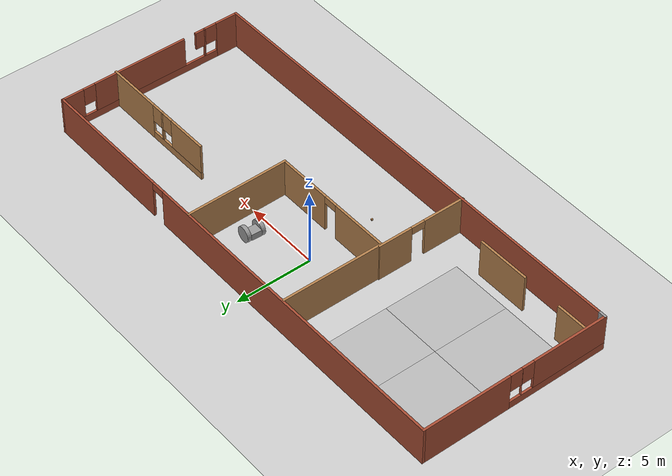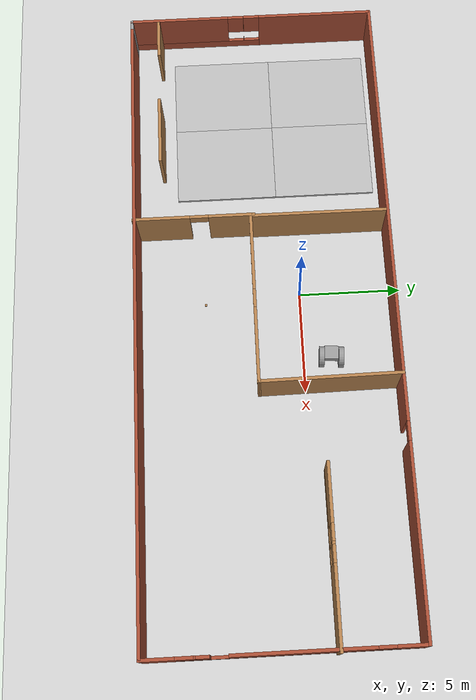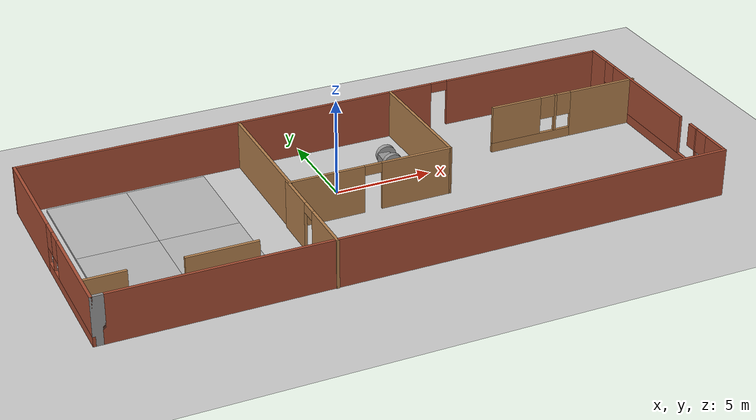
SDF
<sdf version="1.7">
 <world name="default">
  <model name="ground_plane">
   <static>1</static>
   <link name="link">
    <collision name="collision">
     <geometry><plane><normal>0 0 1</normal><size>100 100</size></plane></geometry>
     <surface>
      <contact><collide_bitmask>65535</collide_bitmask></contact>
      <friction><ode><mu>100</mu><mu2>50</mu2></ode></friction>
     </surface>
    </collision>
    <visual name="visual">
     <cast_shadows>0</cast_shadows>
     <geometry><plane><normal>0 0 1</normal><size>100 100</size></plane></geometry>
     <material>
      <script><uri>file://media/materials/scripts/gazebo.material</uri><name>Gazebo/Grey</name></script>
     </material>
    </visual>
   </link>
  </model>
  <model name="apartment">
   <pose>1.18499 -1.72683 0 0 -0 0</pose>
   <link name="Wall_18">
    <collision name="Wall_18_Collision">
     <geometry><box><size>31.25 0.15 2.5</size></box></geometry>
     <pose>0 0 1.25 0 -0 0</pose>
    </collision>
    <visual name="Wall_18_Visual">
     <pose>0 0 1.25 0 -0 0</pose>
     <geometry><box><size>31.25 0.15 2.5</size></box></geometry>
     <material>
      <script><uri>file://media/materials/scripts/gazebo.material</uri><name>Gazebo/Bricks</name></script>
      <ambient>1 1 1 1</ambient>
     </material>
     <meta><layer>0</layer></meta>
    </visual>
    <pose>0.204376 -6.15477 0 0 -0 0</pose>
   </link>
   <link name="Wall_19">
    <pose>15.7544 0.020228 0 0 -0 1.5708</pose>
    <visual name="Wall_19_Visual_0">
     <pose>-5.46179 0 1.25 0 -0 0</pose>
     <geometry><box><size>1.57641 0.15 2.5</size></box></geometry>
     <material>
      <script><uri>file://media/materials/scripts/gazebo.material</uri><name>Gazebo/Bricks</name></script>
      <ambient>1 1 1 1</ambient>
     </material>
     <meta><layer>0</layer></meta>
    </visual>
    <collision name="Wall_19_Collision_0">
     <geometry><box><size>1.57641 0.15 2.5</size></box></geometry>
     <pose>-5.46179 0 1.25 0 -0 0</pose>
    </collision>
    <visual name="Wall_19_Visual_1">
     <pose>0.788206 0 0.25 0 -0 0</pose>
     <geometry><box><size>10.9236 0.15 0.5</size></box></geometry>
     <material>
      <script><uri>file://media/materials/scripts/gazebo.material</uri><name>Gazebo/Bricks</name></script>
      <ambient>1 1 1 1</ambient>
     </material>
     <meta><layer>0</layer></meta>
    </visual>
    <collision name="Wall_19_Collision_1">
     <geometry><box><size>10.9236 0.15 0.5</size></box></geometry>
     <pose>0.788206 0 0.25 0 -0 0</pose>
    </collision>
    <visual name="Wall_19_Visual_2">
     <pose>-3.82858 0 1.5 0 -0 0</pose>
     <geometry><box><size>0.090023 0.15 2</size></box></geometry>
     <material>
      <script><uri>file://media/materials/scripts/gazebo.material</uri><name>Gazebo/Bricks</name></script>
      <ambient>1 1 1 1</ambient>
     </material>
     <meta><layer>0</layer></meta>
    </visual>
    <collision name="Wall_19_Collision_2">
     <geometry><box><size>0.090023 0.15 2</size></box></geometry>
     <pose>-3.82858 0 1.5 0 -0 0</pose>
    </collision>
    <visual name="Wall_19_Visual_3">
     <pose>0.803587 0 1.5 0 -0 0</pose>
     <geometry><box><size>6.36064 0.15 2</size></box></geometry>
     <material>
      <script><uri>file://media/materials/scripts/gazebo.material</uri><name>Gazebo/Bricks</name></script>
      <ambient>1 1 1 1</ambient>
     </material>
     <meta><layer>0</layer></meta>
    </visual>
    <collision name="Wall_19_Collision_3">
     <geometry><box><size>6.36064 0.15 2</size></box></geometry>
     <pose>0.803587 0 1.5 0 -0 0</pose>
    </collision>
    <visual name="Wall_19_Visual_4">
     <pose>5.51695 0 1.5 0 -0 0</pose>
     <geometry><box><size>1.46609 0.15 2</size></box></geometry>
     <material>
      <script><uri>file://media/materials/scripts/gazebo.material</uri><name>Gazebo/Bricks</name></script>
      <ambient>1 1 1 1</ambient>
     </material>
     <meta><layer>0</layer></meta>
    </visual>
    <collision name="Wall_19_Collision_4">
     <geometry><box><size>1.46609 0.15 2</size></box></geometry>
     <pose>5.51695 0 1.5 0 -0 0</pose>
    </collision>
    <visual name="Wall_19_Visual_5">
     <pose>-4.27359 0 1.9 0 -0 0</pose>
     <geometry><box><size>0.8 0.15 1.2</size></box></geometry>
     <material>
      <script><uri>file://media/materials/scripts/gazebo.material</uri><name>Gazebo/Bricks</name></script>
      <ambient>1 1 1 1</ambient>
     </material>
     <meta><layer>0</layer></meta>
    </visual>
    <collision name="Wall_19_Collision_5">
     <geometry><box><size>0.8 0.15 1.2</size></box></geometry>
     <pose>-4.27359 0 1.9 0 -0 0</pose>
    </collision>
    <visual name="Wall_19_Visual_6">
     <pose>-3.48015 0 1.9 0 -0 0</pose>
     <geometry><box><size>0.606833 0.15 1.2</size></box></geometry>
     <material>
      <script><uri>file://media/materials/scripts/gazebo.material</uri><name>Gazebo/Bricks</name></script>
      <ambient>1 1 1 1</ambient>
     </material>
     <meta><layer>0</layer></meta>
    </visual>
    <collision name="Wall_19_Collision_6">
     <geometry><box><size>0.606833 0.15 1.2</size></box></geometry>
     <pose>-3.48015 0 1.9 0 -0 0</pose>
    </collision>
    <visual name="Wall_19_Visual_7">
     <pose>4.38391 0 1.9 0 -0 0</pose>
     <geometry><box><size>0.8 0.15 1.2</size></box></geometry>
     <material>
      <script><uri>file://media/materials/scripts/gazebo.material</uri><name>Gazebo/Bricks</name></script>
      <ambient>1 1 1 1</ambient>
     </material>
     <meta><layer>0</layer></meta>
    </visual>
    <collision name="Wall_19_Collision_7">
     <geometry><box><size>0.8 0.15 1.2</size></box></geometry>
     <pose>4.38391 0 1.9 0 -0 0</pose>
    </collision>
   </link>
   <link name="Wall_20">
    <pose>-0.045624 6.19523 0 0 -0 3.14159</pose>
    <visual name="Wall_20_Visual_0">
     <pose>-11.4355 0 1.25 0 -0 0</pose>
     <geometry><box><size>8.87899 0.15 2.5</size></box></geometry>
     <material>
      <script><uri>file://media/materials/scripts/gazebo.material</uri><name>Gazebo/Bricks</name></script>
      <ambient>1 1 1 1</ambient>
     </material>
     <meta><layer>0</layer></meta>
    </visual>
    <collision name="Wall_20_Collision_0">
     <geometry><box><size>8.87899 0.15 2.5</size></box></geometry>
     <pose>-11.4355 0 1.25 0 -0 0</pose>
    </collision>
    <visual name="Wall_20_Visual_1">
     <pose>4.88949 0 1.25 0 -0 0</pose>
     <geometry><box><size>21.971 0.15 2.5</size></box></geometry>
     <material>
      <script><uri>file://media/materials/scripts/gazebo.material</uri><name>Gazebo/Bricks</name></script>
      <ambient>1 1 1 1</ambient>
     </material>
     <meta><layer>0</layer></meta>
    </visual>
    <collision name="Wall_20_Collision_1">
     <geometry><box><size>21.971 0.15 2.5</size></box></geometry>
     <pose>4.88949 0 1.25 0 -0 0</pose>
    </collision>
    <visual name="Wall_20_Visual_2">
     <pose>-6.54601 0 2.25 0 -0 0</pose>
     <geometry><box><size>0.9 0.15 0.5</size></box></geometry>
     <material>
      <script><uri>file://media/materials/scripts/gazebo.material</uri><name>Gazebo/Bricks</name></script>
      <ambient>1 1 1 1</ambient>
     </material>
     <meta><layer>0</layer></meta>
    </visual>
    <collision name="Wall_20_Collision_2">
     <geometry><box><size>0.9 0.15 0.5</size></box></geometry>
     <pose>-6.54601 0 2.25 0 -0 0</pose>
    </collision>
   </link>
   <link name="Wall_21">
    <pose>-15.8456 0.020228 0 0 0 -1.5708</pose>
    <visual name="Wall_21_Visual_0">
     <pose>-3.33235 0 1.25 0 -0 0</pose>
     <geometry><box><size>5.8353 0.15 2.5</size></box></geometry>
     <material>
      <script><uri>file://media/materials/scripts/gazebo.material</uri><name>Gazebo/Bricks</name></script>
      <ambient>1 1 1 1</ambient>
     </material>
     <meta><layer>0</layer></meta>
    </visual>
    <collision name="Wall_21_Collision_0">
     <geometry><box><size>5.8353 0.15 2.5</size></box></geometry>
     <pose>-3.33235 0 1.25 0 -0 0</pose>
    </collision>
    <visual name="Wall_21_Visual_1">
     <pose>2.91765 0 0.25 0 -0 0</pose>
     <geometry><box><size>6.6647 0.15 0.5</size></box></geometry>
     <material>
      <script><uri>file://media/materials/scripts/gazebo.material</uri><name>Gazebo/Bricks</name></script>
      <ambient>1 1 1 1</ambient>
     </material>
     <meta><layer>0</layer></meta>
    </visual>
    <collision name="Wall_21_Collision_1">
     <geometry><box><size>6.6647 0.15 0.5</size></box></geometry>
     <pose>2.91765 0 0.25 0 -0 0</pose>
    </collision>
    <visual name="Wall_21_Visual_2">
     <pose>0.389852 0 1.5 0 -0 0</pose>
     <geometry><box><size>0.009111 0.15 2</size></box></geometry>
     <material>
      <script><uri>file://media/materials/scripts/gazebo.material</uri><name>Gazebo/Bricks</name></script>
      <ambient>1 1 1 1</ambient>
     </material>
     <meta><layer>0</layer></meta>
    </visual>
    <collision name="Wall_21_Collision_2">
     <geometry><box><size>0.009111 0.15 2</size></box></geometry>
     <pose>0.389852 0 1.5 0 -0 0</pose>
    </collision>
    <visual name="Wall_21_Visual_3">
     <pose>3.7222 0 1.5 0 -0 0</pose>
     <geometry><box><size>5.05559 0.15 2</size></box></geometry>
     <material>
      <script><uri>file://media/materials/scripts/gazebo.material</uri><name>Gazebo/Bricks</name></script>
      <ambient>1 1 1 1</ambient>
     </material>
     <meta><layer>0</layer></meta>
    </visual>
    <collision name="Wall_21_Collision_3">
     <geometry><box><size>5.05559 0.15 2</size></box></geometry>
     <pose>3.7222 0 1.5 0 -0 0</pose>
    </collision>
    <visual name="Wall_21_Visual_4">
     <pose>-0.014703 0 1.9 0 -0 0</pose>
     <geometry><box><size>0.8 0.15 1.2</size></box></geometry>
     <material>
      <script><uri>file://media/materials/scripts/gazebo.material</uri><name>Gazebo/Bricks</name></script>
      <ambient>1 1 1 1</ambient>
     </material>
     <meta><layer>0</layer></meta>
    </visual>
    <collision name="Wall_21_Collision_4">
     <geometry><box><size>0.8 0.15 1.2</size></box></geometry>
     <pose>-0.014703 0 1.9 0 -0 0</pose>
    </collision>
    <visual name="Wall_21_Visual_5">
     <pose>0.794408 0 1.9 0 -0 0</pose>
     <geometry><box><size>0.8 0.15 1.2</size></box></geometry>
     <material>
      <script><uri>file://media/materials/scripts/gazebo.material</uri><name>Gazebo/Bricks</name></script>
      <ambient>1 1 1 1</ambient>
     </material>
     <meta><layer>0</layer></meta>
    </visual>
    <collision name="Wall_21_Collision_5">
     <geometry><box><size>0.8 0.15 1.2</size></box></geometry>
     <pose>0.794408 0 1.9 0 -0 0</pose>
    </collision>
   </link>
   <link name="Wall_22">
    <collision name="Wall_22_Collision">
     <geometry><box><size>0.65 0.15 2.5</size></box></geometry>
     <pose>0 0 1.25 0 -0 0</pose>
    </collision>
    <visual name="Wall_22_Visual">
     <pose>0 0 1.25 0 -0 0</pose>
     <geometry><box><size>0.65 0.15 2.5</size></box></geometry>
     <material>
      <script><uri>file://media/materials/scripts/gazebo.material</uri><name>Gazebo/Grey</name></script>
      <ambient>1 1 1 1</ambient>
     </material>
     <meta><layer>0</layer></meta>
    </visual>
    <pose>-15.5956 -6.15477 0 0 -0 0</pose>
   </link>
   <link name="Wall_24">
    <collision name="Wall_24_Collision">
     <geometry><box><size>6.8314 0.15 2.5</size></box></geometry>
     <pose>0 0 1.25 0 -0 0</pose>
    </collision>
    <visual name="Wall_24_Visual">
     <pose>0 0 1.25 0 -0 0</pose>
     <geometry><box><size>6.8314 0.15 2.5</size></box></geometry>
     <material>
      <script><uri>file://media/materials/scripts/gazebo.material</uri><name>Gazebo/Wood</name></script>
      <ambient>0.996078 0.47451 0.0196078 1</ambient>
     </material>
     <meta><layer>0</layer></meta>
    </visual>
    <pose>3.78986 2.84372 0 0 0 -1.55869</pose>
   </link>
   <link name="Wall_27">
    <pose>-0.344681 -0.496732 0 0 -0 3.14159</pose>
    <visual name="Wall_27_Visual_0">
     <pose>-2.39449 0 1.25 0 -0 0</pose>
     <geometry><box><size>3.71101 0.15 2.5</size></box></geometry>
     <material>
      <script><uri>file://media/materials/scripts/gazebo.material</uri><name>Gazebo/Wood</name></script>
      <ambient>0.996078 0.47451 0.0196078 1</ambient>
     </material>
     <meta><layer>0</layer></meta>
    </visual>
    <collision name="Wall_27_Collision_0">
     <geometry><box><size>3.71101 0.15 2.5</size></box></geometry>
     <pose>-2.39449 0 1.25 0 -0 0</pose>
    </collision>
    <visual name="Wall_27_Visual_1">
     <pose>2.30551 0 1.25 0 -0 0</pose>
     <geometry><box><size>3.88899 0.15 2.5</size></box></geometry>
     <material>
      <script><uri>file://media/materials/scripts/gazebo.material</uri><name>Gazebo/Wood</name></script>
      <ambient>0.996078 0.47451 0.0196078 1</ambient>
     </material>
     <meta><layer>0</layer></meta>
    </visual>
    <collision name="Wall_27_Collision_1">
     <geometry><box><size>3.88899 0.15 2.5</size></box></geometry>
     <pose>2.30551 0 1.25 0 -0 0</pose>
    </collision>
    <visual name="Wall_27_Visual_2">
     <pose>-0.088987 0 2.25 0 -0 0</pose>
     <geometry><box><size>0.9 0.15 0.5</size></box></geometry>
     <material>
      <script><uri>file://media/materials/scripts/gazebo.material</uri><name>Gazebo/Wood</name></script>
      <ambient>0.996078 0.47451 0.0196078 1</ambient>
     </material>
     <meta><layer>0</layer></meta>
    </visual>
    <collision name="Wall_27_Collision_2">
     <geometry><box><size>0.9 0.15 0.5</size></box></geometry>
     <pose>-0.088987 0 2.25 0 -0 0</pose>
    </collision>
   </link>
   <link name="Wall_28">
    <collision name="Wall_28_Collision">
     <geometry><box><size>6.75 0.15 2.5</size></box></geometry>
     <pose>0 0 1.25 0 -0 0</pose>
    </collision>
    <visual name="Wall_28_Visual">
     <pose>0 0 1.25 0 -0 0</pose>
     <geometry><box><size>6.75 0.15 2.5</size></box></geometry>
     <material>
      <script><uri>file://media/materials/scripts/gazebo.material</uri><name>Gazebo/Wood</name></script>
      <ambient>0.996078 0.47451 0.0196078 1</ambient>
     </material>
     <meta><layer>0</layer></meta>
    </visual>
    <pose>-4.51968 2.80327 0 0 -0 1.5708</pose>
   </link>
   <link name="Wall_35">
    <pose>11.7956 2.42181 0 0 -0 3.14159</pose>
    <visual name="Wall_35_Visual_0">
     <pose>-2.24449 0 1.25 0 -0 0</pose>
     <geometry><box><size>3.76101 0.15 2.5</size></box></geometry>
     <material>
      <script><uri>file://media/materials/scripts/gazebo.material</uri><name>Gazebo/Wood</name></script>
      <ambient>0.996078 0.47451 0.0196078 1</ambient>
     </material>
     <meta><layer>0</layer></meta>
    </visual>
    <collision name="Wall_35_Collision_0">
     <geometry><box><size>3.76101 0.15 2.5</size></box></geometry>
     <pose>-2.24449 0 1.25 0 -0 0</pose>
    </collision>
    <visual name="Wall_35_Visual_1">
     <pose>1.88051 0 0.25 0 -0 0</pose>
     <geometry><box><size>4.48899 0.15 0.5</size></box></geometry>
     <material>
      <script><uri>file://media/materials/scripts/gazebo.material</uri><name>Gazebo/Wood</name></script>
      <ambient>0.996078 0.47451 0.0196078 1</ambient>
     </material>
     <meta><layer>0</layer></meta>
    </visual>
    <collision name="Wall_35_Collision_1">
     <geometry><box><size>4.48899 0.15 0.5</size></box></geometry>
     <pose>1.88051 0 0.25 0 -0 0</pose>
    </collision>
    <visual name="Wall_35_Visual_2">
     <pose>0.501253 0 1.5 0 -0 0</pose>
     <geometry><box><size>0.130478 0.15 2</size></box></geometry>
     <material>
      <script><uri>file://media/materials/scripts/gazebo.material</uri><name>Gazebo/Wood</name></script>
      <ambient>0.996078 0.47451 0.0196078 1</ambient>
     </material>
     <meta><layer>0</layer></meta>
    </visual>
    <collision name="Wall_35_Collision_2">
     <geometry><box><size>0.130478 0.15 2</size></box></geometry>
     <pose>0.501253 0 1.5 0 -0 0</pose>
    </collision>
    <visual name="Wall_35_Visual_3">
     <pose>2.74575 0 1.5 0 -0 0</pose>
     <geometry><box><size>2.75851 0.15 2</size></box></geometry>
     <material>
      <script><uri>file://media/materials/scripts/gazebo.material</uri><name>Gazebo/Wood</name></script>
      <ambient>0.996078 0.47451 0.0196078 1</ambient>
     </material>
     <meta><layer>0</layer></meta>
    </visual>
    <collision name="Wall_35_Collision_3">
     <geometry><box><size>2.75851 0.15 2</size></box></geometry>
     <pose>2.74575 0 1.5 0 -0 0</pose>
    </collision>
    <visual name="Wall_35_Visual_4">
     <pose>0.036014 0 1.9 0 -0 0</pose>
     <geometry><box><size>0.8 0.15 1.2</size></box></geometry>
     <material>
      <script><uri>file://media/materials/scripts/gazebo.material</uri><name>Gazebo/Wood</name></script>
      <ambient>0.996078 0.47451 0.0196078 1</ambient>
     </material>
     <meta><layer>0</layer></meta>
    </visual>
    <collision name="Wall_35_Collision_4">
     <geometry><box><size>0.8 0.15 1.2</size></box></geometry>
     <pose>0.036014 0 1.9 0 -0 0</pose>
    </collision>
    <visual name="Wall_35_Visual_5">
     <pose>0.966492 0 1.9 0 -0 0</pose>
     <geometry><box><size>0.8 0.15 1.2</size></box></geometry>
     <material>
      <script><uri>file://media/materials/scripts/gazebo.material</uri><name>Gazebo/Wood</name></script>
      <ambient>0.996078 0.47451 0.0196078 1</ambient>
     </material>
     <meta><layer>0</layer></meta>
    </visual>
    <collision name="Wall_35_Collision_5">
     <geometry><box><size>0.8 0.15 1.2</size></box></geometry>
     <pose>0.966492 0 1.9 0 -0 0</pose>
    </collision>
   </link>
   <link name="Wall_38">
    <collision name="Wall_38_Collision">
     <geometry><box><size>2 0.15 2.5</size></box></geometry>
     <pose>0 0 1.25 0 -0 0</pose>
    </collision>
    <visual name="Wall_38_Visual">
     <pose>0 0 1.25 0 -0 0</pose>
     <geometry><box><size>2 0.15 2.5</size></box></geometry>
     <material>
      <script><uri>file://media/materials/scripts/gazebo.material</uri><name>Gazebo/Wood</name></script>
      <ambient>0.996078 0.47451 0.0196078 1</ambient>
     </material>
     <meta><layer>0</layer></meta>
    </visual>
    <pose>-14.7847 -4.77928 0 0 -0 0</pose>
   </link>
   <link name="Wall_40">
    <collision name="Wall_40_Collision">
     <geometry><box><size>3.5 0.15 2.5</size></box></geometry>
     <pose>0 0 1.25 0 -0 0</pose>
    </collision>
    <visual name="Wall_40_Visual">
     <pose>0 0 1.25 0 -0 0</pose>
     <geometry><box><size>3.5 0.15 2.5</size></box></geometry>
     <material>
      <script><uri>file://media/materials/scripts/gazebo.material</uri><name>Gazebo/Wood</name></script>
      <ambient>0.996078 0.47451 0.0196078 1</ambient>
     </material>
     <meta><layer>0</layer></meta>
    </visual>
    <pose>-9.46324 -4.81974 0 0 -0 0</pose>
   </link>
   <link name="Wall_42">
    <pose>-4.58444 -3.27023 0 0 -0 1.5708</pose>
    <visual name="Wall_42_Visual_0">
     <pose>-1.5895 0 1.25 0 -0 0</pose>
     <geometry><box><size>2.82099 0.15 2.5</size></box></geometry>
     <material>
      <script><uri>file://media/materials/scripts/gazebo.material</uri><name>Gazebo/Wood</name></script>
      <ambient>0.996078 0.47451 0.0196078 1</ambient>
     </material>
     <meta><layer>0</layer></meta>
    </visual>
    <collision name="Wall_42_Collision_0">
     <geometry><box><size>2.82099 0.15 2.5</size></box></geometry>
     <pose>-1.5895 0 1.25 0 -0 0</pose>
    </collision>
    <visual name="Wall_42_Visual_1">
     <pose>1.8605 0 1.25 0 -0 0</pose>
     <geometry><box><size>2.27901 0.15 2.5</size></box></geometry>
     <material>
      <script><uri>file://media/materials/scripts/gazebo.material</uri><name>Gazebo/Wood</name></script>
      <ambient>0.996078 0.47451 0.0196078 1</ambient>
     </material>
     <meta><layer>0</layer></meta>
    </visual>
    <collision name="Wall_42_Collision_1">
     <geometry><box><size>2.27901 0.15 2.5</size></box></geometry>
     <pose>1.8605 0 1.25 0 -0 0</pose>
    </collision>
    <visual name="Wall_42_Visual_2">
     <pose>0.27099 0 2.25 0 -0 0</pose>
     <geometry><box><size>0.9 0.15 0.5</size></box></geometry>
     <material>
      <script><uri>file://media/materials/scripts/gazebo.material</uri><name>Gazebo/Wood</name></script>
      <ambient>0.996078 0.47451 0.0196078 1</ambient>
     </material>
     <meta><layer>0</layer></meta>
    </visual>
    <collision name="Wall_42_Collision_2">
     <geometry><box><size>0.9 0.15 0.5</size></box></geometry>
     <pose>0.27099 0 2.25 0 -0 0</pose>
    </collision>
   </link>
   <static>1</static>
  </model>
  <model name="mud_box">
   <static>1</static>
   <link name="link">
    <collision name="collision"><geometry><box><size>8 10 0.2</size></box></geometry></collision>
    <visual name="visual_1">
     <pose>-2 2.5 0 0 -0 0</pose>
     <cast_shadows>0</cast_shadows>
     <geometry><box><size>4 5 0.2</size></box></geometry>
     <material>
      <script>
       <uri>model://mud_box/materials/scripts</uri>
       <uri>model://mud_box/materials/textures</uri>
       <name>vrc/mud</name>
      </script>
     </material>
    </visual>
    <visual name="visual_2">
     <pose>2 2.5 0 0 -0 0</pose>
     <cast_shadows>0</cast_shadows>
     <geometry><box><size>4 5 0.2</size></box></geometry>
     <material>
      <script>
       <uri>model://mud_box/materials/scripts</uri>
       <uri>model://mud_box/materials/textures</uri>
       <name>vrc/mud</name>
      </script>
     </material>
    </visual>
    <visual name="visual_3">
     <pose>2 -2.5 0 0 -0 0</pose>
     <cast_shadows>0</cast_shadows>
     <geometry><box><size>4 5 0.2</size></box></geometry>
     <material>
      <script>
       <uri>model://mud_box/materials/scripts</uri>
       <uri>model://mud_box/materials/textures</uri>
       <name>vrc/mud</name>
      </script>
     </material>
    </visual>
    <visual name="visual_4">
     <pose>-2 -2.5 0 0 -0 0</pose>
     <cast_shadows>0</cast_shadows>
     <geometry><box><size>4 5 0.2</size></box></geometry>
     <material>
      <script>
       <uri>model://mud_box/materials/scripts</uri>
       <uri>model://mud_box/materials/textures</uri>
       <name>vrc/mud</name>
      </script>
     </material>
    </visual>
   </link>
   <pose>-9.4102 -0.874676 0 0 -0 0</pose>
  </model>
  <model name="wood_cube_10cm">
   <link name="link">
    <pose>0 0 0.05 0 -0 0</pose>
    <inertial>
     <mass>0.5167</mass>
     <inertia>
      <ixx>0.000861167</ixx>
      <ixy>0</ixy>
      <ixz>0</ixz>
      <iyy>0.000861167</iyy>
      <iyz>0</iyz>
      <izz>0.000861167</izz>
     </inertia>
    </inertial>
    <collision name="collision">
     <geometry><box><size>0.1 0.1 0.1</size></box></geometry>
     <surface>
      <contact>
       <poissons_ratio>0.347</poissons_ratio>
       <elastic_modulus>8.8e+09</elastic_modulus>
       <ode><kp>100000</kp><kd>100</kd><max_vel>100</max_vel><min_depth>0.001</min_depth></ode>
      </contact>
      <friction>
       <torsional>
        <coefficient>1</coefficient>
        <use_patch_radius>0</use_patch_radius>
        <surface_radius>0.01</surface_radius>
       </torsional>
      </friction>
     </surface>
    </collision>
    <visual name="visual">
     <geometry><box><size>0.1 0.1 0.1</size></box></geometry>
     <material>
      <script><uri>file://media/materials/scripts/gazebo.material</uri><name>Gazebo/Wood</name></script>
     </material>
    </visual>
   </link>
   <pose>0.31646 -4.64371 -0.001013 0 -0 0</pose>
  </model>
  <model name="bigwheel_0">
   <link name="link_0">
    <pose>-0.059968 0.467368 0 0 -0 0</pose>
    <inertial>
     <mass>1</mass>
     <inertia><ixx>0.145833</ixx><ixy>0</ixy><ixz>0</ixz><iyy>0.145833</iyy><iyz>0</iyz><izz>0.125</izz></inertia>
     <pose>0 0 0.5 1.5707 -0 0</pose>
    </inertial>
    <visual name="visual">
     <pose>0 0 0 1.5707 -0 0</pose>
     <geometry><cylinder><radius>0.5</radius><length>0.25</length></cylinder></geometry>
     <material>
      <lighting>1</lighting>
      <script><uri>file://media/materials/scripts/gazebo.material</uri><name>Gazebo/Grey</name></script>
      <shader type="pixel"><normal_map>__default__</normal_map></shader>
      <ambient>0.3 0.3 0.3 1</ambient>
      <diffuse>0.7 0.7 0.7 1</diffuse>
      <specular>0.01 0.01 0.01 1</specular>
      <emissive>0 0 0 1</emissive>
     </material>
    </visual>
    <collision name="collision">
     <pose>0 0 0 1.5707 -0 0</pose>
     <geometry><cylinder><radius>0.5</radius><length>0.25</length></cylinder></geometry>
     <surface>
      <friction>
       <ode><mu>1</mu><mu2>1</mu2><fdir1>0 0 0</fdir1><slip1>0</slip1><slip2>0</slip2></ode>
       <torsional>
        <coefficient>1</coefficient>
        <patch_radius>0</patch_radius>
        <surface_radius>0</surface_radius>
        <use_patch_radius>1</use_patch_radius>
        <ode><slip>0</slip></ode>
       </torsional>
      </friction>
      <bounce><restitution_coefficient>0</restitution_coefficient><threshold>1e+06</threshold></bounce>
      <contact>
       <collide_without_contact>0</collide_without_contact>
       <collide_without_contact_bitmask>1</collide_without_contact_bitmask>
       <collide_bitmask>1</collide_bitmask>
       <ode>
        <soft_cfm>0</soft_cfm>
        <soft_erp>0.2</soft_erp>
        <kp>1e+13</kp>
        <kd>1</kd>
        <max_vel>0.01</max_vel>
        <min_depth>0</min_depth>
       </ode>
       <bullet>
        <split_impulse>1</split_impulse>
        <split_impulse_penetration_threshold>-0.01</split_impulse_penetration_threshold>
        <soft_cfm>0</soft_cfm>
        <soft_erp>0.2</soft_erp>
        <kp>1e+13</kp>
        <kd>1</kd>
       </bullet>
      </contact>
     </surface>
    </collision>
   </link>
   <link name="link_0_clone">
    <pose>-0.059968 -0.467369 0 0 -0 0</pose>
    <inertial>
     <mass>1</mass>
     <inertia><ixx>0.145833</ixx><ixy>0</ixy><ixz>0</ixz><iyy>0.145833</iyy><iyz>0</iyz><izz>0.125</izz></inertia>
     <pose>0 0 0.5 1.5707 -0 0</pose>
    </inertial>
    <visual name="visual">
     <pose>0 0 0 1.5707 -0 0</pose>
     <geometry><cylinder><radius>0.5</radius><length>0.25</length></cylinder></geometry>
     <material>
      <lighting>1</lighting>
      <script><uri>file://media/materials/scripts/gazebo.material</uri><name>Gazebo/Grey</name></script>
      <shader type="pixel"><normal_map>__default__</normal_map></shader>
      <ambient>0.3 0.3 0.3 1</ambient>
      <diffuse>0.7 0.7 0.7 1</diffuse>
      <specular>0.01 0.01 0.01 1</specular>
      <emissive>0 0 0 1</emissive>
     </material>
    </visual>
    <collision name="collision">
     <pose>0 0 0 1.5707 -0 0</pose>
     <geometry><cylinder><radius>0.5</radius><length>0.25</length></cylinder></geometry>
     <surface>
      <friction>
       <ode><mu>1</mu><mu2>1</mu2><fdir1>0 0 0</fdir1><slip1>0</slip1><slip2>0</slip2></ode>
       <torsional>
        <coefficient>1</coefficient>
        <patch_radius>0</patch_radius>
        <surface_radius>0</surface_radius>
        <use_patch_radius>1</use_patch_radius>
        <ode><slip>0</slip></ode>
       </torsional>
      </friction>
      <bounce><restitution_coefficient>0</restitution_coefficient><threshold>1e+06</threshold></bounce>
      <contact>
       <collide_without_contact>0</collide_without_contact>
       <collide_without_contact_bitmask>1</collide_without_contact_bitmask>
       <collide_bitmask>1</collide_bitmask>
       <ode>
        <soft_cfm>0</soft_cfm>
        <soft_erp>0.2</soft_erp>
        <kp>1e+13</kp>
        <kd>1</kd>
        <max_vel>0.01</max_vel>
        <min_depth>0</min_depth>
       </ode>
       <bullet>
        <split_impulse>1</split_impulse>
        <split_impulse_penetration_threshold>-0.01</split_impulse_penetration_threshold>
        <soft_cfm>0</soft_cfm>
        <soft_erp>0.2</soft_erp>
        <kp>1e+13</kp>
        <kd>1</kd>
       </bullet>
      </contact>
     </surface>
    </collision>
   </link>
   <link name="link_1">
    <pose>0.119938 0 0 0 -0 0</pose>
    <inertial>
     <mass>0.17574</mass>
     <inertia>
      <ixx>0.00921905</ixx>
      <ixy>0</ixy>
      <ixz>0</ixz>
      <iyy>0.00835657</iyy>
      <iyz>0</iyz>
      <izz>0.0128667</izz>
     </inertia>
    </inertial>
    <visual name="visual">
     <geometry><box><size>0.640188 0.684641 0.400961</size></box></geometry>
     <material>
      <lighting>1</lighting>
      <script><uri>file://media/materials/scripts/gazebo.material</uri><name>Gazebo/Grey</name></script>
      <shader type="pixel"/>
      <ambient>0.3 0.3 0.3 1</ambient>
      <diffuse>0.7 0.7 0.7 1</diffuse>
      <specular>0.01 0.01 0.01 1</specular>
      <emissive>0 0 0 1</emissive>
     </material>
    </visual>
    <collision name="collision">
     <geometry><box><size>0.640188 0.684641 0.400961</size></box></geometry>
     <surface>
      <friction>
       <ode><mu>1</mu><mu2>1</mu2><fdir1>0 0 0</fdir1><slip1>0</slip1><slip2>0</slip2></ode>
       <torsional>
        <coefficient>1</coefficient>
        <patch_radius>0</patch_radius>
        <surface_radius>0</surface_radius>
        <use_patch_radius>1</use_patch_radius>
        <ode><slip>0</slip></ode>
       </torsional>
      </friction>
      <bounce><restitution_coefficient>0</restitution_coefficient><threshold>1e+06</threshold></bounce>
      <contact>
       <collide_without_contact>0</collide_without_contact>
       <collide_without_contact_bitmask>1</collide_without_contact_bitmask>
       <collide_bitmask>1</collide_bitmask>
       <ode>
        <soft_cfm>0</soft_cfm>
        <soft_erp>0.2</soft_erp>
        <kp>1e+13</kp>
        <kd>1</kd>
        <max_vel>0.01</max_vel>
        <min_depth>0</min_depth>
       </ode>
       <bullet>
        <split_impulse>1</split_impulse>
        <split_impulse_penetration_threshold>-0.01</split_impulse_penetration_threshold>
        <soft_cfm>0</soft_cfm>
        <soft_erp>0.2</soft_erp>
        <kp>1e+13</kp>
        <kd>1</kd>
       </bullet>
      </contact>
     </surface>
    </collision>
   </link>
   <joint name="link_1_JOINT_0" type="revolute">
    <parent>link_1</parent>
    <child>link_0</child>
    <axis>
     <xyz>0 0 1</xyz>
     <limit>
      <lower>-1.79769e+308</lower>
      <upper>1.79769e+308</upper>
      <effort>-1</effort>
      <velocity>-1</velocity>
     </limit>
     <dynamics>
      <spring_reference>0</spring_reference>
      <spring_stiffness>0</spring_stiffness>
      <damping>0</damping>
     </dynamics>
    </axis>
    <physics>
     <ode><limit><cfm>0</cfm><erp>0.2</erp></limit><suspension><cfm>0</cfm><erp>0.2</erp></suspension></ode>
    </physics>
   </joint>
   <joint name="link_1_JOINT_1" type="revolute">
    <parent>link_1</parent>
    <child>link_0_clone</child>
    <axis>
     <xyz>0 0 1</xyz>
     <limit>
      <lower>-1.79769e+308</lower>
      <upper>1.79769e+308</upper>
      <effort>-1</effort>
      <velocity>-1</velocity>
     </limit>
     <dynamics>
      <spring_reference>0</spring_reference>
      <spring_stiffness>0</spring_stiffness>
      <damping>0</damping>
     </dynamics>
    </axis>
    <physics>
     <ode><limit><cfm>0</cfm><erp>0.2</erp></limit><suspension><cfm>0</cfm><erp>0.2</erp></suspension></ode>
    </physics>
   </joint>
   <static>0</static>
   <pose>3.37651 1.33651 0.501236 3.14157 -0.020537 3.07345</pose>
  </model>
 </world>
</sdf>
